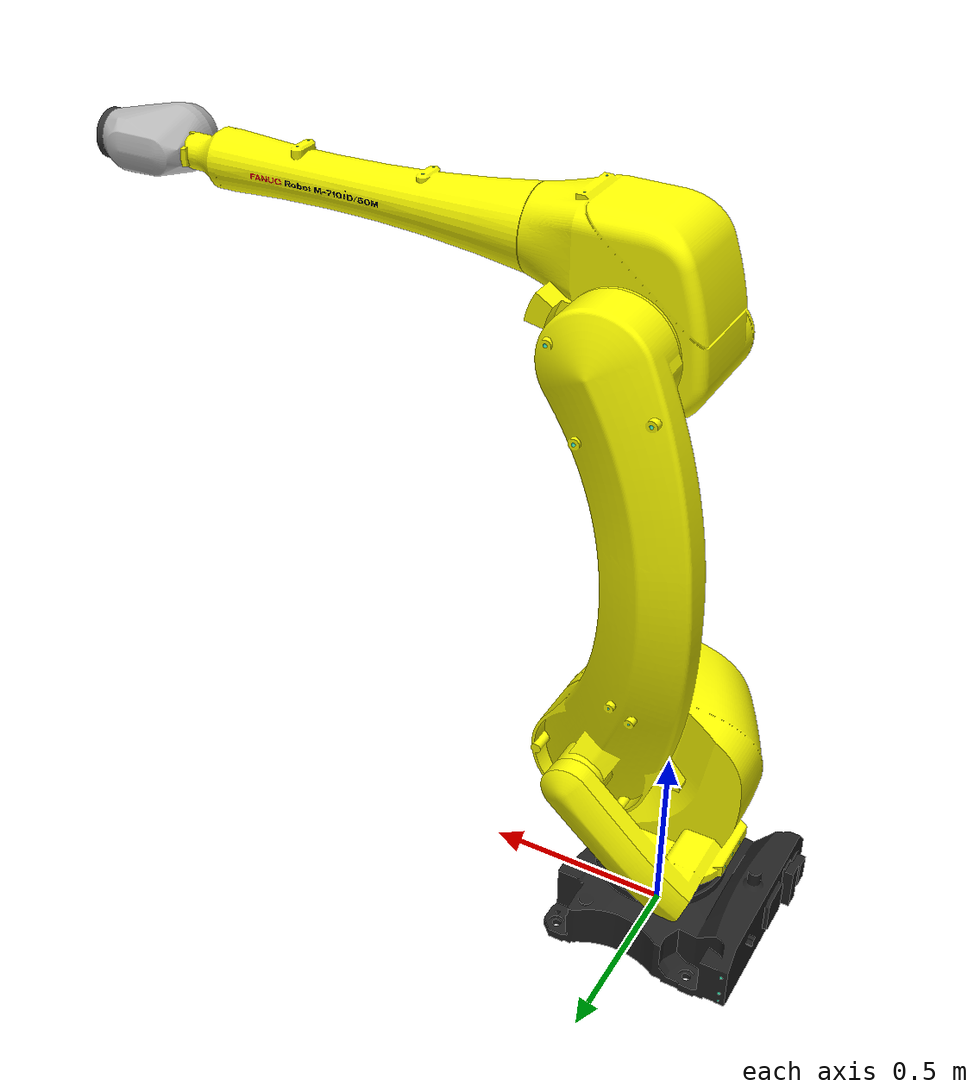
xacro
<?xml version="1.0" ?>
<robot name="m710id_50m" xmlns:xacro="http://wiki.ros.org/xacro">
  <xacro:include
    filename="$(find fanuc_m710_description)/urdf/m710id_50m_urdf_macro.xacro"
  />

  <link name="world" />
  <link name="ee_link" />
  <xacro:m710id_50m parent="world" child="ee_link">
    <origin xyz="0 0 0" rpy="0 0 0" />
  </xacro:m710id_50m>
</robot>

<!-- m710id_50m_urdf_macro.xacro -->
<!--
SPDX-FileCopyrightText: 2026, FANUC America Corporation
SPDX-FileCopyrightText: 2026, FANUC CORPORATION
SPDX-License-Identifier: Apache-2.0
-->
<!-- URDF for M-710/50-26D (M-710iD/50M) -->
<robot xmlns:xacro="http://wiki.ros.org/xacro">
  <xacro:macro
    name="m710id_50m"
    params="prefix=''
            parent
            *origin
            child"
  >

    <xacro:property name="j1_lower_limit" value="${radians(-185)}" />
    <xacro:property name="j2_lower_limit" value="${radians(-75)}" />
    <xacro:property name="j3_lower_limit" value="${radians(-80.5)}" />
    <xacro:property name="j4_lower_limit" value="${radians(-400)}" />
    <xacro:property name="j5_lower_limit" value="${radians(-125)}" />
    <xacro:property name="j6_lower_limit" value="${radians(-400)}" />

    <xacro:property name="j1_upper_limit" value="${radians(185)}" />
    <xacro:property name="j2_upper_limit" value="${radians(150)}" />
    <xacro:property name="j3_upper_limit" value="${radians(205)}" />
    <xacro:property name="j4_upper_limit" value="${radians(400)}" />
    <xacro:property name="j5_upper_limit" value="${radians(125)}" />
    <xacro:property name="j6_upper_limit" value="${radians(400)}" />

    <xacro:property name="j1_effort_limit" value="8000" />
    <xacro:property name="j2_effort_limit" value="10000" />
    <xacro:property name="j3_effort_limit" value="5000" />
    <xacro:property name="j4_effort_limit" value="2000" />
    <xacro:property name="j5_effort_limit" value="1000" />
    <xacro:property name="j6_effort_limit" value="900" />

    <xacro:property name="j1_velocity_limit" value="${radians(180)}" />
    <xacro:property name="j2_velocity_limit" value="${radians(180)}" />
    <xacro:property name="j3_velocity_limit" value="${radians(180)}" />
    <xacro:property name="j4_velocity_limit" value="${radians(260)}" />
    <xacro:property name="j5_velocity_limit" value="${radians(260)}" />
    <xacro:property name="j6_velocity_limit" value="${radians(370)}" />

    <!-- links -->
    <link name="${prefix}base_link">
      <visual>
        <origin xyz="0 0 0" rpy="0 0 0" />
        <geometry>
          <mesh
            filename="package://fanuc_m710_description/meshes/m710id_50m/visual/base.dae"
          />
        </geometry>
      </visual>
      <collision>
        <origin xyz="0 0 0" rpy="0 0 0" />
        <geometry>
          <mesh
            filename="package://fanuc_m710_description/meshes/m710id_50m/collision/base.stl"
          />
        </geometry>
      </collision>
      <inertial>
        <mass value=" 109" />
        <origin xyz="-.0562 -.000509  .109" />
        <inertia
          ixx=" 2.8"
          ixy="-.0329"
          ixz=" .025"
          iyy=" 3"
          iyz=" .00163"
          izz=" 4.87"
        />
      </inertial>
    </link>

    <link name="${prefix}J1_link">
      <visual>
        <origin xyz="0 0 0" rpy="0 0 0" />
        <geometry>
          <mesh
            filename="package://fanuc_m710_description/meshes/m710id_50m/visual/j1.dae"
          />
        </geometry>
      </visual>
      <collision>
        <origin xyz="0 0 0" rpy="0 0 0" />
        <geometry>
          <mesh
            filename="package://fanuc_m710_description/meshes/m710id_50m/collision/j1.stl"
          />
        </geometry>
      </collision>
      <inertial>
        <mass value=" 180" />
        <origin xyz=" .0361 -.00381 -.0873" />
        <inertia
          ixx=" 6.87"
          ixy=" .225"
          ixz="-.615"
          iyy=" 5.55"
          iyz=" .424"
          izz=" 7.07"
        />
      </inertial>
    </link>

    <link name="${prefix}J2_link">
      <visual>
        <origin xyz="0 0 0" rpy="0 0 0" />
        <geometry>
          <mesh
            filename="package://fanuc_m710_description/meshes/m710id_50m/visual/j2.dae"
          />
        </geometry>
      </visual>
      <collision>
        <origin xyz="0 0 0" rpy="0 0 0" />
        <geometry>
          <mesh
            filename="package://fanuc_m710_description/meshes/m710id_50m/collision/j2.stl"
          />
        </geometry>
      </collision>
      <inertial>
        <mass value=" 167" />
        <origin xyz="-.035  .173  .519" />
        <inertia
          ixx=" 24.1"
          ixy=" .149"
          ixz=" .00551"
          iyy=" 25.3"
          iyz="-1.58"
          izz=" 2.46"
        />
      </inertial>
    </link>

    <link name="${prefix}J3_link">
      <visual>
        <origin xyz="0 0 0" rpy="0 0 0" />
        <geometry>
          <mesh
            filename="package://fanuc_m710_description/meshes/m710id_50m/visual/j3.dae"
          />
        </geometry>
      </visual>
      <collision>
        <origin xyz="0 0 0" rpy="0 0 0" />
        <geometry>
          <mesh
            filename="package://fanuc_m710_description/meshes/m710id_50m/collision/j3.stl"
          />
        </geometry>
      </collision>
      <inertial>
        <mass value=" 89.4" />
        <origin xyz=" .0255 -.005  .0679" />
        <inertia
          ixx=" 1.9"
          ixy="-.0775"
          ixz="-.311"
          iyy=" 2.41"
          iyz="-.06"
          izz=" 1.92"
        />
      </inertial>
    </link>

    <link name="${prefix}J4_link">
      <visual>
        <origin xyz="0 0 0" rpy="0 0 0" />
        <geometry>
          <mesh
            filename="package://fanuc_m710_description/meshes/m710id_50m/visual/j4.dae"
          />
        </geometry>
      </visual>
      <collision>
        <origin xyz="0 0 0" rpy="0 0 0" />
        <geometry>
          <mesh
            filename="package://fanuc_m710_description/meshes/m710id_50m/collision/j4.stl"
          />
        </geometry>
      </collision>
      <inertial>
        <mass value=" 44.2" />
        <origin xyz=" .722 -.00464  .0000825" />
        <inertia
          ixx=" .181"
          ixy=" .0138"
          ixz=" .0000199"
          iyy=" 3.93"
          iyz="-.000138"
          izz=" 3.93"
        />
      </inertial>
    </link>

    <link name="${prefix}J5_link">
      <visual>
        <origin xyz="0 0 0" rpy="0 0 0" />
        <geometry>
          <mesh
            filename="package://fanuc_m710_description/meshes/m710id_50m/visual/j5.dae"
          />
        </geometry>
      </visual>
      <collision>
        <origin xyz="0 0 0" rpy="0 0 0" />
        <geometry>
          <mesh
            filename="package://fanuc_m710_description/meshes/m710id_50m/collision/j5.stl"
          />
        </geometry>
      </collision>
      <inertial>
        <mass value=" 9.67" />
        <origin xyz=" .0325 -.0138  .000000624" />
        <inertia
          ixx=" .0432"
          ixy="-.00522"
          ixz="-.000000315"
          iyy=" .0487"
          iyz="-.0000000877"
          izz=" .0633"
        />
      </inertial>
    </link>

    <link name="${prefix}J6_link">
      <visual>
        <origin xyz="0 0 0" rpy="0 0 0" />
        <geometry>
          <mesh
            filename="package://fanuc_m710_description/meshes/m710id_50m/visual/j6.dae"
          />
        </geometry>
      </visual>
      <collision>
        <origin xyz="0 0 0" rpy="0 0 0" />
        <geometry>
          <mesh
            filename="package://fanuc_m710_description/meshes/m710id_50m/collision/j6.stl"
          />
        </geometry>
      </collision>
      <inertial>
        <mass value=" .415" />
        <origin xyz=" .165  4.54E-18  2.83E-18" />
        <inertia
          ixx=" .000809"
          ixy=" 1.32E-19"
          ixz=" 3E-19"
          iyy=" .000417"
          iyz=" .0000000000746"
          izz=" .000417"
        />
      </inertial>
    </link>

    <!-- joints -->
    <joint name="${prefix}J1" type="revolute">
      <origin xyz=" 0  0  .565" rpy="0 0 0" />
      <parent link="${prefix}base_link" />
      <child link="${prefix}J1_link" />
      <axis xyz=" 0  0  1" />
      <limit
        lower="${j1_lower_limit}"
        upper="${j1_upper_limit}"
        effort="${j1_effort_limit}"
        velocity="${j1_velocity_limit}"
      />
    </joint>

    <joint name="${prefix}J2" type="revolute">
      <origin xyz=" .15  0  0" rpy="0 0 0" />
      <parent link="${prefix}J1_link" />
      <child link="${prefix}J2_link" />
      <axis xyz=" 0  1  0" />
      <limit
        lower="${j2_lower_limit}"
        upper="${j2_upper_limit}"
        effort="${j2_effort_limit}"
        velocity="${j2_velocity_limit}"
      />
    </joint>

    <joint name="${prefix}J3" type="revolute">
      <origin xyz=" 0  0  1.15" rpy="0 0 0" />
      <parent link="${prefix}J2_link" />
      <child link="${prefix}J3_link" />
      <axis xyz=" 0 -1  0" />
      <limit
        lower="${j3_lower_limit}"
        upper="${j3_upper_limit}"
        effort="${j3_effort_limit}"
        velocity="${j3_velocity_limit}"
      />
    </joint>

    <joint name="${prefix}J4" type="revolute">
      <origin xyz=" 0  0  .17" rpy="0 0 0" />
      <parent link="${prefix}J3_link" />
      <child link="${prefix}J4_link" />
      <axis xyz="-1  0  0" />
      <limit
        lower="${j4_lower_limit}"
        upper="${j4_upper_limit}"
        effort="${j4_effort_limit}"
        velocity="${j4_velocity_limit}"
      />
    </joint>

    <joint name="${prefix}J5" type="revolute">
      <origin xyz=" 1.295  0  0" rpy="0 0 0" />
      <parent link="${prefix}J4_link" />
      <child link="${prefix}J5_link" />
      <axis xyz=" 0 -1  0" />
      <limit
        lower="${j5_lower_limit}"
        upper="${j5_upper_limit}"
        effort="${j5_effort_limit}"
        velocity="${j5_velocity_limit}"
      />
    </joint>

    <joint name="${prefix}J6" type="revolute">
      <origin xyz=" 0  0  0" rpy="0 0 0" />
      <parent link="${prefix}J5_link" />
      <child link="${prefix}J6_link" />
      <axis xyz="-1  0  0" />
      <limit
        lower="${j6_lower_limit}"
        upper="${j6_upper_limit}"
        effort="${j6_effort_limit}"
        velocity="${j6_velocity_limit}"
      />
    </joint>

    <!-- world coords -->
    <link name="${prefix}wbase" />
    <joint name="${prefix}base_link-wbase" type="fixed">
      <origin xyz=" 0  0  .565" rpy="0 0 0" />
      <parent link="${prefix}base_link" />
      <child link="${prefix}wbase" />
    </joint>

    <!-- flange coords -->
    <link name="${prefix}flange" />
    <joint name="${prefix}J6-flange" type="fixed">
      <origin xyz=" .175  0  0" rpy="0 0 0" />
      <parent link="${prefix}J6_link" />
      <child link="${prefix}flange" />
    </joint>

    <!-- FANUC flange coords -->
    <link name="${prefix}fanuc_flange" />
    <joint name="${prefix}flange-fanuc_flange" type="fixed">
      <origin xyz="0 0 0" rpy="${radians( 180)} ${radians(-90)} ${radians( 0)}" />
      <parent link="${prefix}flange" />
      <child link="${prefix}fanuc_flange" />
    </joint>

    <!-- Attach to parent -->
    <joint name="${prefix}base_joint" type="fixed">
      <xacro:insert_block name="origin" />
      <parent link="${parent}" />
      <child link="${prefix}base_link" />
    </joint>

    <!-- Attach child -->
    <joint name="${prefix}child_joint" type="fixed">
      <origin xyz="0 0 0" rpy="0 0 0" />
      <parent link="${prefix}flange" />
      <child link="${child}" />
    </joint>
  </xacro:macro>
</robot>
